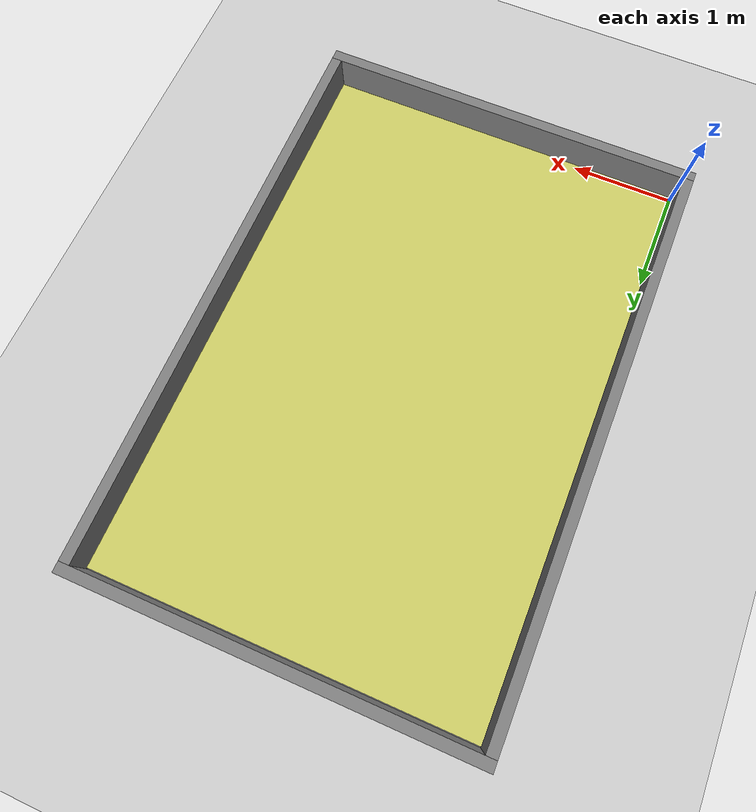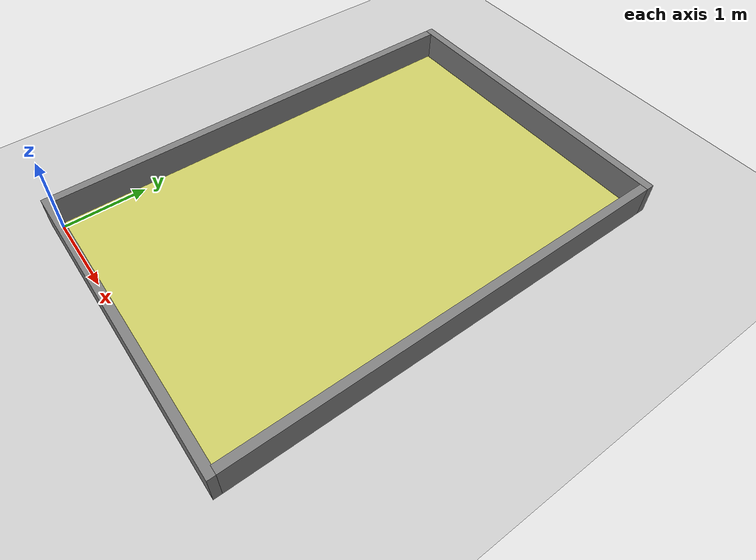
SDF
<?xml version="1.0" ?>
<sdf version="1.4">

  <world name="default">

    <gui>
      <plugin name="sample" filename="libspawn_sphere.so"/>
    </gui>

    <include>
      <uri>model://ground_plane</uri>
    </include>

    <!-- Global light source -->
    <include>
      <uri>model://sun</uri>
    </include>

    <!-- Focus camera on tall pendulum -->
    <gui fullscreen='0'>
      <camera name='user_camera'>
        <pose>4.927360 -4.376610 3.740080 0.000000 0.275643 2.356190</pose>
        <view_controller>orbit</view_controller>
      </camera>
    </gui>

    <!--Field Model-->
  <model name="field">
    <static>true</static>
    <pose>1.8 1 0 0 0 -1.57</pose>
    <link name="floor">
     <visual name="floor">
        <pose>-1.7 0 0.01 0 0 0</pose>
        <cast_shadows>false</cast_shadows>
        <geometry>
          <box>
            <size>5.4 3.6 0.1</size>
          </box>
        </geometry>
        <material>
          <ambient>0.8 0.8 0.4 1</ambient>
          <diffuse>0.8 0.8 0.4 1</diffuse>
          <specular>0.8 0.8 0.4 1</specular>
          <emissive>0 0 0 0</emissive>
        </material>
      </visual>
      <collision name="floor_collision">
        <pose>-1.7 0 0.01 0 0 0</pose>
        <geometry>
          <box>
            <size>5.4 3.6 0.1</size>
          </box>
        </geometry>
      </collision>
    </link>
    <link name="east_wall">
     <visual name="east_wall">
        <pose>-1.7 -1.85 0.22 0 0 0</pose>
        <cast_shadows>false</cast_shadows>
        <geometry>
          <box>
            <size>5.42 0.1 0.4</size>
          </box>
        </geometry>
        <material>
        <ambient>0.5 0.5 0.5 1</ambient>
          <diffuse>0.5 0.5 0.5 1</diffuse>
          <specular>0.5 0.5 0.5 1</specular>
          <emissive>0 0 0 0</emissive>
        </material>
      </visual>
      <collision name="east_wall_collision">
        <pose>-1.7 -1.85 0.22 0 0 0</pose>
        <geometry>
          <box>
            <size>5.42 0.1 0.4</size>
          </box>
        </geometry>
      </collision>
    </link>
    <link name="west_wall">
     <visual name="west_wall">
        <pose>-1.7 1.85 0.22 0 0 0</pose>
        <cast_shadows>false</cast_shadows>
        <geometry>
          <box>
            <size>5.42 0.1 0.4</size>
          </box>
        </geometry>
        <material>
          <ambient>0.5 0.5 0.5 1</ambient>
          <diffuse>0.5 0.5 0.5 1</diffuse>
          <specular>0.5 0.5 0.5 1</specular>
          <emissive>0 0 0 0</emissive>
        </material>
      </visual>
      <collision name="west_wall_collision">
        <pose>-1.7 1.85 0.22 0 0 0</pose>
        <geometry>
          <box>
            <size>5.42 0.1 0.4</size>
          </box>
        </geometry>
      </collision>
    </link>
    <link name="south_wall">
     <visual name="south_wall">
        <pose>1.05 0 0.22 0 0 0</pose>
        <cast_shadows>false</cast_shadows>
        <geometry>
          <box>
            <size>0.1 3.8 0.4</size>
          </box>
        </geometry>
        <material>
          <ambient>0.5 0.5 0.5 1</ambient>
          <diffuse>0.5 0.5 0.5 1</diffuse>
          <specular>0.5 0.5 0.5 1</specular>
          <emissive>0 0 0 0</emissive>
        </material>
      </visual>
      <collision name="south_wall_collision">
        <pose>1.05 0 0.22 0 0 0</pose>
        <geometry>
          <box>
            <size>0.1 3.8 0.4</size>
          </box>
        </geometry>
      </collision>
    </link>
    <link name="north_wall">
     <visual name="north_wall">
        <pose>-4.46 0 0.22 0 0 0</pose>
        <cast_shadows>false</cast_shadows>
        <geometry>
          <box>
            <size>0.1 3.8 0.4</size>
          </box>
        </geometry>
        <material>
          <ambient>0.5 0.5 0.5 1</ambient>
          <diffuse>0.5 0.5 0.5 1</diffuse>
          <specular>0.5 0.5 0.5 1</specular>
          <emissive>0 0 0 0</emissive>
        </material>
      </visual>
      <collision name="north_wall_collision">
        <pose>-4.46 0 0.22 0 0 0</pose>
        <geometry>
          <box>
            <size>0.1 3.8 0.4</size>
          </box>
        </geometry>
      </collision>
    </link>
  </model>
  </world>
</sdf>
